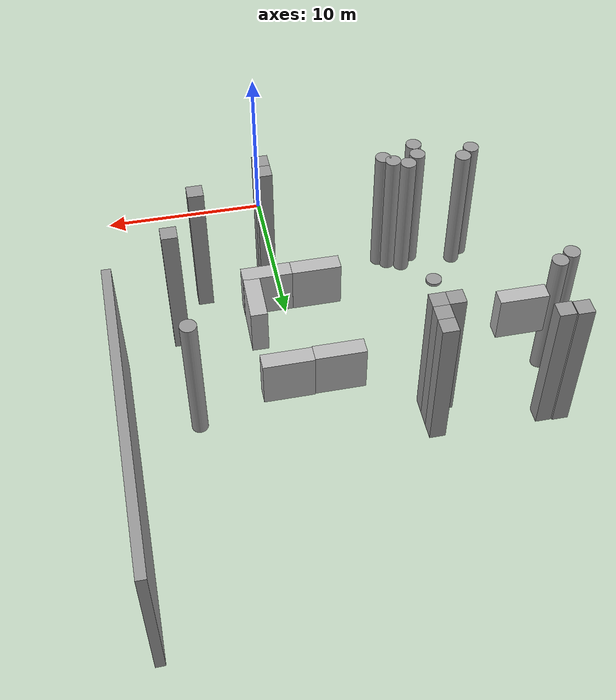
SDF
<sdf version="1.6">
 <model name="MW_world_1_0_0">
  <link name="link_0_0_clone_5">
   <pose>-15.6457 13.7871 0.5 0 -0 0</pose>
   <inertial>
    <mass>9.05819</mass>
    <inertia><ixx>62.5018</ixx><ixy>0</ixy><ixz>0</ixz><iyy>62.5018</iyy><iyz>0</iyz><izz>1.13227</izz></inertia>
   </inertial>
   <visual name="visual_0">
    <geometry><cylinder><radius>0.5</radius><length>9.05819</length></cylinder></geometry>
    <material>
     <lighting>1</lighting>
     <script><uri>file://media/materials/scripts/gazebo.material</uri><name>Gazebo/Grey</name></script>
     <ambient>0.3 0.3 0.3 1</ambient>
     <diffuse>0.7 0.7 0.7 1</diffuse>
     <specular>0.01 0.01 0.01 1</specular>
     <emissive>0 0 0 1</emissive>
     <shader type="pixel"/>
    </material>
   </visual>
   <collision name="collision">
    <geometry><cylinder><radius>0.5</radius><length>9.05819</length></cylinder></geometry>
    <surface>
     <friction>
      <ode><mu>1</mu><mu2>1</mu2><fdir1>0 0 0</fdir1><slip1>0</slip1><slip2>0</slip2></ode>
      <torsional>
       <coefficient>1</coefficient>
       <patch_radius>0</patch_radius>
       <surface_radius>0</surface_radius>
       <use_patch_radius>1</use_patch_radius>
       <ode><slip>0</slip></ode>
      </torsional>
     </friction>
     <bounce><restitution_coefficient>0</restitution_coefficient><threshold>1e+06</threshold></bounce>
     <contact>
      <collide_without_contact>0</collide_without_contact>
      <collide_without_contact_bitmask>1</collide_without_contact_bitmask>
      <collide_bitmask>1</collide_bitmask>
      <ode>
       <soft_cfm>0</soft_cfm>
       <soft_erp>0.2</soft_erp>
       <kp>1e+13</kp>
       <kd>1</kd>
       <max_vel>0.01</max_vel>
       <min_depth>0</min_depth>
      </ode>
      <bullet>
       <split_impulse>1</split_impulse>
       <split_impulse_penetration_threshold>-0.01</split_impulse_penetration_threshold>
       <soft_cfm>0</soft_cfm>
       <soft_erp>0.2</soft_erp>
       <kp>1e+13</kp>
       <kd>1</kd>
      </bullet>
     </contact>
    </surface>
   </collision>
  </link>
  <link name="link_0_0_clone_5_clone">
   <pose>-16.5428 13.2528 0.5 0 -0 0</pose>
   <inertial>
    <mass>9.05819</mass>
    <inertia><ixx>62.5018</ixx><ixy>0</ixy><ixz>0</ixz><iyy>62.5018</iyy><iyz>0</iyz><izz>1.13227</izz></inertia>
   </inertial>
   <visual name="visual_0">
    <geometry><cylinder><radius>0.5</radius><length>9.05819</length></cylinder></geometry>
    <material>
     <lighting>1</lighting>
     <script><uri>file://media/materials/scripts/gazebo.material</uri><name>Gazebo/Grey</name></script>
     <ambient>0.3 0.3 0.3 1</ambient>
     <diffuse>0.7 0.7 0.7 1</diffuse>
     <specular>0.01 0.01 0.01 1</specular>
     <emissive>0 0 0 1</emissive>
     <shader type="pixel"/>
    </material>
   </visual>
   <collision name="collision">
    <geometry><cylinder><radius>0.5</radius><length>9.05819</length></cylinder></geometry>
    <surface>
     <friction>
      <ode><mu>1</mu><mu2>1</mu2><fdir1>0 0 0</fdir1><slip1>0</slip1><slip2>0</slip2></ode>
      <torsional>
       <coefficient>1</coefficient>
       <patch_radius>0</patch_radius>
       <surface_radius>0</surface_radius>
       <use_patch_radius>1</use_patch_radius>
       <ode><slip>0</slip></ode>
      </torsional>
     </friction>
     <bounce><restitution_coefficient>0</restitution_coefficient><threshold>1e+06</threshold></bounce>
     <contact>
      <collide_without_contact>0</collide_without_contact>
      <collide_without_contact_bitmask>1</collide_without_contact_bitmask>
      <collide_bitmask>1</collide_bitmask>
      <ode>
       <soft_cfm>0</soft_cfm>
       <soft_erp>0.2</soft_erp>
       <kp>1e+13</kp>
       <kd>1</kd>
       <max_vel>0.01</max_vel>
       <min_depth>0</min_depth>
      </ode>
      <bullet>
       <split_impulse>1</split_impulse>
       <split_impulse_penetration_threshold>-0.01</split_impulse_penetration_threshold>
       <soft_cfm>0</soft_cfm>
       <soft_erp>0.2</soft_erp>
       <kp>1e+13</kp>
       <kd>1</kd>
      </bullet>
     </contact>
    </surface>
   </collision>
  </link>
  <link name="link_0_0_clone_5_clone_13_clone">
   <pose>6.21273 14.6456 0.5 0 -0 0</pose>
   <inertial>
    <mass>9.05819</mass>
    <inertia><ixx>62.5018</ixx><ixy>0</ixy><ixz>0</ixz><iyy>62.5018</iyy><iyz>0</iyz><izz>1.13227</izz></inertia>
   </inertial>
   <visual name="visual_0">
    <geometry><cylinder><radius>0.5</radius><length>9.05819</length></cylinder></geometry>
    <material>
     <lighting>1</lighting>
     <script><uri>file://media/materials/scripts/gazebo.material</uri><name>Gazebo/Grey</name></script>
     <ambient>0.3 0.3 0.3 1</ambient>
     <diffuse>0.7 0.7 0.7 1</diffuse>
     <specular>0.01 0.01 0.01 1</specular>
     <emissive>0 0 0 1</emissive>
     <shader type="pixel"/>
    </material>
   </visual>
   <collision name="collision">
    <geometry><cylinder><radius>0.5</radius><length>9.05819</length></cylinder></geometry>
    <surface>
     <friction>
      <ode><mu>1</mu><mu2>1</mu2><fdir1>0 0 0</fdir1><slip1>0</slip1><slip2>0</slip2></ode>
      <torsional>
       <coefficient>1</coefficient>
       <patch_radius>0</patch_radius>
       <surface_radius>0</surface_radius>
       <use_patch_radius>1</use_patch_radius>
       <ode><slip>0</slip></ode>
      </torsional>
     </friction>
     <bounce><restitution_coefficient>0</restitution_coefficient><threshold>1e+06</threshold></bounce>
     <contact>
      <collide_without_contact>0</collide_without_contact>
      <collide_without_contact_bitmask>1</collide_without_contact_bitmask>
      <collide_bitmask>1</collide_bitmask>
      <ode>
       <soft_cfm>0</soft_cfm>
       <soft_erp>0.2</soft_erp>
       <kp>1e+13</kp>
       <kd>1</kd>
       <max_vel>0.01</max_vel>
       <min_depth>0</min_depth>
      </ode>
      <bullet>
       <split_impulse>1</split_impulse>
       <split_impulse_penetration_threshold>-0.01</split_impulse_penetration_threshold>
       <soft_cfm>0</soft_cfm>
       <soft_erp>0.2</soft_erp>
       <kp>1e+13</kp>
       <kd>1</kd>
      </bullet>
     </contact>
    </surface>
   </collision>
  </link>
  <link name="link_0_0_clone_5_clone_2_clone_10">
   <pose>-13.5677 2.7321 0.5 0 -0 0</pose>
   <inertial>
    <mass>9.05819</mass>
    <inertia><ixx>62.5018</ixx><ixy>0</ixy><ixz>0</ixz><iyy>62.5018</iyy><iyz>0</iyz><izz>1.13227</izz></inertia>
   </inertial>
   <visual name="visual_0">
    <geometry><cylinder><radius>0.5</radius><length>9.05819</length></cylinder></geometry>
    <material>
     <lighting>1</lighting>
     <script><uri>file://media/materials/scripts/gazebo.material</uri><name>Gazebo/Grey</name></script>
     <ambient>0.3 0.3 0.3 1</ambient>
     <diffuse>0.7 0.7 0.7 1</diffuse>
     <specular>0.01 0.01 0.01 1</specular>
     <emissive>0 0 0 1</emissive>
     <shader type="pixel"/>
    </material>
   </visual>
   <collision name="collision">
    <geometry><cylinder><radius>0.5</radius><length>9.05819</length></cylinder></geometry>
    <surface>
     <friction>
      <ode><mu>1</mu><mu2>1</mu2><fdir1>0 0 0</fdir1><slip1>0</slip1><slip2>0</slip2></ode>
      <torsional>
       <coefficient>1</coefficient>
       <patch_radius>0</patch_radius>
       <surface_radius>0</surface_radius>
       <use_patch_radius>1</use_patch_radius>
       <ode><slip>0</slip></ode>
      </torsional>
     </friction>
     <bounce><restitution_coefficient>0</restitution_coefficient><threshold>1e+06</threshold></bounce>
     <contact>
      <collide_without_contact>0</collide_without_contact>
      <collide_without_contact_bitmask>1</collide_without_contact_bitmask>
      <collide_bitmask>1</collide_bitmask>
      <ode>
       <soft_cfm>0</soft_cfm>
       <soft_erp>0.2</soft_erp>
       <kp>1e+13</kp>
       <kd>1</kd>
       <max_vel>0.01</max_vel>
       <min_depth>0</min_depth>
      </ode>
      <bullet>
       <split_impulse>1</split_impulse>
       <split_impulse_penetration_threshold>-0.01</split_impulse_penetration_threshold>
       <soft_cfm>0</soft_cfm>
       <soft_erp>0.2</soft_erp>
       <kp>1e+13</kp>
       <kd>1</kd>
      </bullet>
     </contact>
    </surface>
   </collision>
  </link>
  <link name="link_0_0_clone_5_clone_2_clone_10_clone">
   <pose>-12.8482 3.45059 0.5 0 -0 0</pose>
   <inertial>
    <mass>9.05819</mass>
    <inertia><ixx>62.5018</ixx><ixy>0</ixy><ixz>0</ixz><iyy>62.5018</iyy><iyz>0</iyz><izz>1.13227</izz></inertia>
   </inertial>
   <visual name="visual_0">
    <geometry><cylinder><radius>0.5</radius><length>9.05819</length></cylinder></geometry>
    <material>
     <lighting>1</lighting>
     <script><uri>file://media/materials/scripts/gazebo.material</uri><name>Gazebo/Grey</name></script>
     <ambient>0.3 0.3 0.3 1</ambient>
     <diffuse>0.7 0.7 0.7 1</diffuse>
     <specular>0.01 0.01 0.01 1</specular>
     <emissive>0 0 0 1</emissive>
     <shader type="pixel"/>
    </material>
   </visual>
   <collision name="collision">
    <geometry><cylinder><radius>0.5</radius><length>9.05819</length></cylinder></geometry>
    <surface>
     <friction>
      <ode><mu>1</mu><mu2>1</mu2><fdir1>0 0 0</fdir1><slip1>0</slip1><slip2>0</slip2></ode>
      <torsional>
       <coefficient>1</coefficient>
       <patch_radius>0</patch_radius>
       <surface_radius>0</surface_radius>
       <use_patch_radius>1</use_patch_radius>
       <ode><slip>0</slip></ode>
      </torsional>
     </friction>
     <bounce><restitution_coefficient>0</restitution_coefficient><threshold>1e+06</threshold></bounce>
     <contact>
      <collide_without_contact>0</collide_without_contact>
      <collide_without_contact_bitmask>1</collide_without_contact_bitmask>
      <collide_bitmask>1</collide_bitmask>
      <ode>
       <soft_cfm>0</soft_cfm>
       <soft_erp>0.2</soft_erp>
       <kp>1e+13</kp>
       <kd>1</kd>
       <max_vel>0.01</max_vel>
       <min_depth>0</min_depth>
      </ode>
      <bullet>
       <split_impulse>1</split_impulse>
       <split_impulse_penetration_threshold>-0.01</split_impulse_penetration_threshold>
       <soft_cfm>0</soft_cfm>
       <soft_erp>0.2</soft_erp>
       <kp>1e+13</kp>
       <kd>1</kd>
      </bullet>
     </contact>
    </surface>
   </collision>
  </link>
  <link name="link_0_0_clone_5_clone_2_clone_3">
   <pose>-10.0181 1.7321 0.5 0 -0 0</pose>
   <inertial>
    <mass>9.05819</mass>
    <inertia><ixx>62.5018</ixx><ixy>0</ixy><ixz>0</ixz><iyy>62.5018</iyy><iyz>0</iyz><izz>1.13227</izz></inertia>
   </inertial>
   <visual name="visual_0">
    <geometry><cylinder><radius>0.5</radius><length>9.05819</length></cylinder></geometry>
    <material>
     <lighting>1</lighting>
     <script><uri>file://media/materials/scripts/gazebo.material</uri><name>Gazebo/Grey</name></script>
     <ambient>0.3 0.3 0.3 1</ambient>
     <diffuse>0.7 0.7 0.7 1</diffuse>
     <specular>0.01 0.01 0.01 1</specular>
     <emissive>0 0 0 1</emissive>
     <shader type="pixel"/>
    </material>
   </visual>
   <collision name="collision">
    <geometry><cylinder><radius>0.5</radius><length>9.05819</length></cylinder></geometry>
    <surface>
     <friction>
      <ode><mu>1</mu><mu2>1</mu2><fdir1>0 0 0</fdir1><slip1>0</slip1><slip2>0</slip2></ode>
      <torsional>
       <coefficient>1</coefficient>
       <patch_radius>0</patch_radius>
       <surface_radius>0</surface_radius>
       <use_patch_radius>1</use_patch_radius>
       <ode><slip>0</slip></ode>
      </torsional>
     </friction>
     <bounce><restitution_coefficient>0</restitution_coefficient><threshold>1e+06</threshold></bounce>
     <contact>
      <collide_without_contact>0</collide_without_contact>
      <collide_without_contact_bitmask>1</collide_without_contact_bitmask>
      <collide_bitmask>1</collide_bitmask>
      <ode>
       <soft_cfm>0</soft_cfm>
       <soft_erp>0.2</soft_erp>
       <kp>1e+13</kp>
       <kd>1</kd>
       <max_vel>0.01</max_vel>
       <min_depth>0</min_depth>
      </ode>
      <bullet>
       <split_impulse>1</split_impulse>
       <split_impulse_penetration_threshold>-0.01</split_impulse_penetration_threshold>
       <soft_cfm>0</soft_cfm>
       <soft_erp>0.2</soft_erp>
       <kp>1e+13</kp>
       <kd>1</kd>
      </bullet>
     </contact>
    </surface>
   </collision>
  </link>
  <link name="link_0_0_clone_5_clone_2_clone_4">
   <pose>-10.0181 2.7321 0.5 0 -0 0</pose>
   <inertial>
    <mass>9.05819</mass>
    <inertia><ixx>62.5018</ixx><ixy>0</ixy><ixz>0</ixz><iyy>62.5018</iyy><iyz>0</iyz><izz>1.13227</izz></inertia>
   </inertial>
   <visual name="visual_0">
    <geometry><cylinder><radius>0.5</radius><length>9.05819</length></cylinder></geometry>
    <material>
     <lighting>1</lighting>
     <script><uri>file://media/materials/scripts/gazebo.material</uri><name>Gazebo/Grey</name></script>
     <ambient>0.3 0.3 0.3 1</ambient>
     <diffuse>0.7 0.7 0.7 1</diffuse>
     <specular>0.01 0.01 0.01 1</specular>
     <emissive>0 0 0 1</emissive>
     <shader type="pixel"/>
    </material>
   </visual>
   <collision name="collision">
    <geometry><cylinder><radius>0.5</radius><length>9.05819</length></cylinder></geometry>
    <surface>
     <friction>
      <ode><mu>1</mu><mu2>1</mu2><fdir1>0 0 0</fdir1><slip1>0</slip1><slip2>0</slip2></ode>
      <torsional>
       <coefficient>1</coefficient>
       <patch_radius>0</patch_radius>
       <surface_radius>0</surface_radius>
       <use_patch_radius>1</use_patch_radius>
       <ode><slip>0</slip></ode>
      </torsional>
     </friction>
     <bounce><restitution_coefficient>0</restitution_coefficient><threshold>1e+06</threshold></bounce>
     <contact>
      <collide_without_contact>0</collide_without_contact>
      <collide_without_contact_bitmask>1</collide_without_contact_bitmask>
      <collide_bitmask>1</collide_bitmask>
      <ode>
       <soft_cfm>0</soft_cfm>
       <soft_erp>0.2</soft_erp>
       <kp>1e+13</kp>
       <kd>1</kd>
       <max_vel>0.01</max_vel>
       <min_depth>0</min_depth>
      </ode>
      <bullet>
       <split_impulse>1</split_impulse>
       <split_impulse_penetration_threshold>-0.01</split_impulse_penetration_threshold>
       <soft_cfm>0</soft_cfm>
       <soft_erp>0.2</soft_erp>
       <kp>1e+13</kp>
       <kd>1</kd>
      </bullet>
     </contact>
    </surface>
   </collision>
  </link>
  <link name="link_0_0_clone_5_clone_2_clone_4_clone">
   <pose>-9.2441 3.48537 0.5 0 -0 0</pose>
   <inertial>
    <mass>9.05819</mass>
    <inertia><ixx>62.5018</ixx><ixy>0</ixy><ixz>0</ixz><iyy>62.5018</iyy><iyz>0</iyz><izz>1.13227</izz></inertia>
   </inertial>
   <visual name="visual_0">
    <geometry><cylinder><radius>0.5</radius><length>9.05819</length></cylinder></geometry>
    <material>
     <lighting>1</lighting>
     <script><uri>file://media/materials/scripts/gazebo.material</uri><name>Gazebo/Grey</name></script>
     <ambient>0.3 0.3 0.3 1</ambient>
     <diffuse>0.7 0.7 0.7 1</diffuse>
     <specular>0.01 0.01 0.01 1</specular>
     <emissive>0 0 0 1</emissive>
     <shader type="pixel"/>
    </material>
   </visual>
   <collision name="collision">
    <geometry><cylinder><radius>0.5</radius><length>9.05819</length></cylinder></geometry>
    <surface>
     <friction>
      <ode><mu>1</mu><mu2>1</mu2><fdir1>0 0 0</fdir1><slip1>0</slip1><slip2>0</slip2></ode>
      <torsional>
       <coefficient>1</coefficient>
       <patch_radius>0</patch_radius>
       <surface_radius>0</surface_radius>
       <use_patch_radius>1</use_patch_radius>
       <ode><slip>0</slip></ode>
      </torsional>
     </friction>
     <bounce><restitution_coefficient>0</restitution_coefficient><threshold>1e+06</threshold></bounce>
     <contact>
      <collide_without_contact>0</collide_without_contact>
      <collide_without_contact_bitmask>1</collide_without_contact_bitmask>
      <collide_bitmask>1</collide_bitmask>
      <ode>
       <soft_cfm>0</soft_cfm>
       <soft_erp>0.2</soft_erp>
       <kp>1e+13</kp>
       <kd>1</kd>
       <max_vel>0.01</max_vel>
       <min_depth>0</min_depth>
      </ode>
      <bullet>
       <split_impulse>1</split_impulse>
       <split_impulse_penetration_threshold>-0.01</split_impulse_penetration_threshold>
       <soft_cfm>0</soft_cfm>
       <soft_erp>0.2</soft_erp>
       <kp>1e+13</kp>
       <kd>1</kd>
      </bullet>
     </contact>
    </surface>
   </collision>
  </link>
  <link name="link_0_0_clone_5_clone_2_clone_4_clone_0">
   <pose>-8.33133 3.08548 0.5 0 -0 0</pose>
   <inertial>
    <mass>9.05819</mass>
    <inertia><ixx>62.5018</ixx><ixy>0</ixy><ixz>0</ixz><iyy>62.5018</iyy><iyz>0</iyz><izz>1.13227</izz></inertia>
   </inertial>
   <visual name="visual_0">
    <geometry><cylinder><radius>0.5</radius><length>9.05819</length></cylinder></geometry>
    <material>
     <lighting>1</lighting>
     <script><uri>file://media/materials/scripts/gazebo.material</uri><name>Gazebo/Grey</name></script>
     <ambient>0.3 0.3 0.3 1</ambient>
     <diffuse>0.7 0.7 0.7 1</diffuse>
     <specular>0.01 0.01 0.01 1</specular>
     <emissive>0 0 0 1</emissive>
     <shader type="pixel"/>
    </material>
   </visual>
   <collision name="collision">
    <geometry><cylinder><radius>0.5</radius><length>9.05819</length></cylinder></geometry>
    <surface>
     <friction>
      <ode><mu>1</mu><mu2>1</mu2><fdir1>0 0 0</fdir1><slip1>0</slip1><slip2>0</slip2></ode>
      <torsional>
       <coefficient>1</coefficient>
       <patch_radius>0</patch_radius>
       <surface_radius>0</surface_radius>
       <use_patch_radius>1</use_patch_radius>
       <ode><slip>0</slip></ode>
      </torsional>
     </friction>
     <bounce><restitution_coefficient>0</restitution_coefficient><threshold>1e+06</threshold></bounce>
     <contact>
      <collide_without_contact>0</collide_without_contact>
      <collide_without_contact_bitmask>1</collide_without_contact_bitmask>
      <collide_bitmask>1</collide_bitmask>
      <ode>
       <soft_cfm>0</soft_cfm>
       <soft_erp>0.2</soft_erp>
       <kp>1e+13</kp>
       <kd>1</kd>
       <max_vel>0.01</max_vel>
       <min_depth>0</min_depth>
      </ode>
      <bullet>
       <split_impulse>1</split_impulse>
       <split_impulse_penetration_threshold>-0.01</split_impulse_penetration_threshold>
       <soft_cfm>0</soft_cfm>
       <soft_erp>0.2</soft_erp>
       <kp>1e+13</kp>
       <kd>1</kd>
      </bullet>
     </contact>
    </surface>
   </collision>
  </link>
  <link name="link_0_0_clone_5_clone_2_clone_4_clone_1">
   <pose>-7.78727 2.64565 0.5 0 -0 0</pose>
   <inertial>
    <mass>9.05819</mass>
    <inertia><ixx>62.5018</ixx><ixy>0</ixy><ixz>0</ixz><iyy>62.5018</iyy><iyz>0</iyz><izz>1.13227</izz></inertia>
   </inertial>
   <visual name="visual_0">
    <geometry><cylinder><radius>0.5</radius><length>9.05819</length></cylinder></geometry>
    <material>
     <lighting>1</lighting>
     <script><uri>file://media/materials/scripts/gazebo.material</uri><name>Gazebo/Grey</name></script>
     <ambient>0.3 0.3 0.3 1</ambient>
     <diffuse>0.7 0.7 0.7 1</diffuse>
     <specular>0.01 0.01 0.01 1</specular>
     <emissive>0 0 0 1</emissive>
     <shader type="pixel"/>
    </material>
   </visual>
   <collision name="collision">
    <geometry><cylinder><radius>0.5</radius><length>9.05819</length></cylinder></geometry>
    <surface>
     <friction>
      <ode><mu>1</mu><mu2>1</mu2><fdir1>0 0 0</fdir1><slip1>0</slip1><slip2>0</slip2></ode>
      <torsional>
       <coefficient>1</coefficient>
       <patch_radius>0</patch_radius>
       <surface_radius>0</surface_radius>
       <use_patch_radius>1</use_patch_radius>
       <ode><slip>0</slip></ode>
      </torsional>
     </friction>
     <bounce><restitution_coefficient>0</restitution_coefficient><threshold>1e+06</threshold></bounce>
     <contact>
      <collide_without_contact>0</collide_without_contact>
      <collide_without_contact_bitmask>1</collide_without_contact_bitmask>
      <collide_bitmask>1</collide_bitmask>
      <ode>
       <soft_cfm>0</soft_cfm>
       <soft_erp>0.2</soft_erp>
       <kp>1e+13</kp>
       <kd>1</kd>
       <max_vel>0.01</max_vel>
       <min_depth>0</min_depth>
      </ode>
      <bullet>
       <split_impulse>1</split_impulse>
       <split_impulse_penetration_threshold>-0.01</split_impulse_penetration_threshold>
       <soft_cfm>0</soft_cfm>
       <soft_erp>0.2</soft_erp>
       <kp>1e+13</kp>
       <kd>1</kd>
      </bullet>
     </contact>
    </surface>
   </collision>
  </link>
  <link name="link_0_clone">
   <pose>-15.5363 17.7977 0.5 0 -0 0</pose>
   <inertial>
    <mass>9.47467</mass>
    <inertia><ixx>71.6676</ixx><ixy>0</ixy><ixz>0</ixz><iyy>71.6676</iyy><iyz>0</iyz><izz>1.57911</izz></inertia>
   </inertial>
   <visual name="visual">
    <geometry><box><size>1 1 9.47467</size></box></geometry>
    <material>
     <lighting>1</lighting>
     <script><uri>file://media/materials/scripts/gazebo.material</uri><name>Gazebo/Grey</name></script>
     <ambient>0.3 0.3 0.3 1</ambient>
     <diffuse>0.7 0.7 0.7 1</diffuse>
     <specular>0.01 0.01 0.01 1</specular>
     <emissive>0 0 0 1</emissive>
     <shader type="pixel"/>
    </material>
   </visual>
   <collision name="collision">
    <geometry><box><size>1 1 9.47467</size></box></geometry>
    <surface>
     <friction>
      <ode><mu>1</mu><mu2>1</mu2><fdir1>0 0 0</fdir1><slip1>0</slip1><slip2>0</slip2></ode>
      <torsional>
       <coefficient>1</coefficient>
       <patch_radius>0</patch_radius>
       <surface_radius>0</surface_radius>
       <use_patch_radius>1</use_patch_radius>
       <ode><slip>0</slip></ode>
      </torsional>
     </friction>
     <bounce><restitution_coefficient>0</restitution_coefficient><threshold>1e+06</threshold></bounce>
     <contact>
      <collide_without_contact>0</collide_without_contact>
      <collide_without_contact_bitmask>1</collide_without_contact_bitmask>
      <collide_bitmask>1</collide_bitmask>
      <ode>
       <soft_cfm>0</soft_cfm>
       <soft_erp>0.2</soft_erp>
       <kp>1e+13</kp>
       <kd>1</kd>
       <max_vel>0.01</max_vel>
       <min_depth>0</min_depth>
      </ode>
      <bullet>
       <split_impulse>1</split_impulse>
       <split_impulse_penetration_threshold>-0.01</split_impulse_penetration_threshold>
       <soft_cfm>0</soft_cfm>
       <soft_erp>0.2</soft_erp>
       <kp>1e+13</kp>
       <kd>1</kd>
      </bullet>
     </contact>
    </surface>
   </collision>
  </link>
  <link name="link_0_clone_0_clone_clone_2">
   <pose>-0.0181 1.7321 0.5 0 -0 0</pose>
   <inertial>
    <mass>9.47467</mass>
    <inertia><ixx>71.6676</ixx><ixy>0</ixy><ixz>0</ixz><iyy>71.6676</iyy><iyz>0</iyz><izz>1.57911</izz></inertia>
   </inertial>
   <visual name="visual">
    <geometry><box><size>1 1 9.47467</size></box></geometry>
    <material>
     <lighting>1</lighting>
     <script><uri>file://media/materials/scripts/gazebo.material</uri><name>Gazebo/Grey</name></script>
     <ambient>0.3 0.3 0.3 1</ambient>
     <diffuse>0.7 0.7 0.7 1</diffuse>
     <specular>0.01 0.01 0.01 1</specular>
     <emissive>0 0 0 1</emissive>
     <shader type="pixel"/>
    </material>
   </visual>
   <collision name="collision">
    <geometry><box><size>1 1 9.47467</size></box></geometry>
    <surface>
     <friction>
      <ode><mu>1</mu><mu2>1</mu2><fdir1>0 0 0</fdir1><slip1>0</slip1><slip2>0</slip2></ode>
      <torsional>
       <coefficient>1</coefficient>
       <patch_radius>0</patch_radius>
       <surface_radius>0</surface_radius>
       <use_patch_radius>1</use_patch_radius>
       <ode><slip>0</slip></ode>
      </torsional>
     </friction>
     <bounce><restitution_coefficient>0</restitution_coefficient><threshold>1e+06</threshold></bounce>
     <contact>
      <collide_without_contact>0</collide_without_contact>
      <collide_without_contact_bitmask>1</collide_without_contact_bitmask>
      <collide_bitmask>1</collide_bitmask>
      <ode>
       <soft_cfm>0</soft_cfm>
       <soft_erp>0.2</soft_erp>
       <kp>1e+13</kp>
       <kd>1</kd>
       <max_vel>0.01</max_vel>
       <min_depth>0</min_depth>
      </ode>
      <bullet>
       <split_impulse>1</split_impulse>
       <split_impulse_penetration_threshold>-0.01</split_impulse_penetration_threshold>
       <soft_cfm>0</soft_cfm>
       <soft_erp>0.2</soft_erp>
       <kp>1e+13</kp>
       <kd>1</kd>
      </bullet>
     </contact>
    </surface>
   </collision>
  </link>
  <link name="link_0_clone_0_clone_clone_3">
   <pose>-0.0181 2.7321 0.5 0 -0 0</pose>
   <inertial>
    <mass>9.47467</mass>
    <inertia><ixx>71.6676</ixx><ixy>0</ixy><ixz>0</ixz><iyy>71.6676</iyy><iyz>0</iyz><izz>1.57911</izz></inertia>
   </inertial>
   <visual name="visual">
    <geometry><box><size>1 1 9.47467</size></box></geometry>
    <material>
     <lighting>1</lighting>
     <script><uri>file://media/materials/scripts/gazebo.material</uri><name>Gazebo/Grey</name></script>
     <ambient>0.3 0.3 0.3 1</ambient>
     <diffuse>0.7 0.7 0.7 1</diffuse>
     <specular>0.01 0.01 0.01 1</specular>
     <emissive>0 0 0 1</emissive>
     <shader type="pixel"/>
    </material>
   </visual>
   <collision name="collision">
    <geometry><box><size>1 1 9.47467</size></box></geometry>
    <surface>
     <friction>
      <ode><mu>1</mu><mu2>1</mu2><fdir1>0 0 0</fdir1><slip1>0</slip1><slip2>0</slip2></ode>
      <torsional>
       <coefficient>1</coefficient>
       <patch_radius>0</patch_radius>
       <surface_radius>0</surface_radius>
       <use_patch_radius>1</use_patch_radius>
       <ode><slip>0</slip></ode>
      </torsional>
     </friction>
     <bounce><restitution_coefficient>0</restitution_coefficient><threshold>1e+06</threshold></bounce>
     <contact>
      <collide_without_contact>0</collide_without_contact>
      <collide_without_contact_bitmask>1</collide_without_contact_bitmask>
      <collide_bitmask>1</collide_bitmask>
      <ode>
       <soft_cfm>0</soft_cfm>
       <soft_erp>0.2</soft_erp>
       <kp>1e+13</kp>
       <kd>1</kd>
       <max_vel>0.01</max_vel>
       <min_depth>0</min_depth>
      </ode>
      <bullet>
       <split_impulse>1</split_impulse>
       <split_impulse_penetration_threshold>-0.01</split_impulse_penetration_threshold>
       <soft_cfm>0</soft_cfm>
       <soft_erp>0.2</soft_erp>
       <kp>1e+13</kp>
       <kd>1</kd>
      </bullet>
     </contact>
    </surface>
   </collision>
  </link>
  <link name="link_0_clone_1">
   <pose>-9.5387 9.62735 0.5 0 -0 0</pose>
   <inertial>
    <mass>0.190242</mass>
    <inertia>
     <ixx>0.0124639</ixx>
     <ixy>0</ixy>
     <ixz>0</ixz>
     <iyy>0.0124639</iyy>
     <iyz>0</iyz>
     <izz>0.0237802</izz>
    </inertia>
   </inertial>
   <visual name="visual">
    <geometry><cylinder><radius>0.5</radius><length>0.190241</length></cylinder></geometry>
    <material>
     <lighting>1</lighting>
     <script><uri>file://media/materials/scripts/gazebo.material</uri><name>Gazebo/Grey</name></script>
     <ambient>0.3 0.3 0.3 1</ambient>
     <diffuse>0.7 0.7 0.7 1</diffuse>
     <specular>0.01 0.01 0.01 1</specular>
     <emissive>0 0 0 1</emissive>
     <shader type="pixel"/>
    </material>
   </visual>
   <collision name="collision">
    <geometry><cylinder><radius>0.5</radius><length>0.190241</length></cylinder></geometry>
    <surface>
     <friction>
      <ode><mu>1</mu><mu2>1</mu2><fdir1>0 0 0</fdir1><slip1>0</slip1><slip2>0</slip2></ode>
      <torsional>
       <coefficient>1</coefficient>
       <patch_radius>0</patch_radius>
       <surface_radius>0</surface_radius>
       <use_patch_radius>1</use_patch_radius>
       <ode><slip>0</slip></ode>
      </torsional>
     </friction>
     <bounce><restitution_coefficient>0</restitution_coefficient><threshold>1e+06</threshold></bounce>
     <contact>
      <collide_without_contact>0</collide_without_contact>
      <collide_without_contact_bitmask>1</collide_without_contact_bitmask>
      <collide_bitmask>1</collide_bitmask>
      <ode>
       <soft_cfm>0</soft_cfm>
       <soft_erp>0.2</soft_erp>
       <kp>1e+13</kp>
       <kd>1</kd>
       <max_vel>0.01</max_vel>
       <min_depth>0</min_depth>
      </ode>
      <bullet>
       <split_impulse>1</split_impulse>
       <split_impulse_penetration_threshold>-0.01</split_impulse_penetration_threshold>
       <soft_cfm>0</soft_cfm>
       <soft_erp>0.2</soft_erp>
       <kp>1e+13</kp>
       <kd>1</kd>
      </bullet>
     </contact>
    </surface>
   </collision>
  </link>
  <link name="link_0_clone_clone_1_clone_1_clone">
   <pose>6.42816 7.21597 0.5 0 -0 0</pose>
   <inertial>
    <mass>9.47467</mass>
    <inertia><ixx>71.6676</ixx><ixy>0</ixy><ixz>0</ixz><iyy>71.6676</iyy><iyz>0</iyz><izz>1.57911</izz></inertia>
   </inertial>
   <visual name="visual">
    <geometry><box><size>1 1 9.47467</size></box></geometry>
    <material>
     <lighting>1</lighting>
     <script><uri>file://media/materials/scripts/gazebo.material</uri><name>Gazebo/Grey</name></script>
     <ambient>0.3 0.3 0.3 1</ambient>
     <diffuse>0.7 0.7 0.7 1</diffuse>
     <specular>0.01 0.01 0.01 1</specular>
     <emissive>0 0 0 1</emissive>
     <shader type="pixel"/>
    </material>
   </visual>
   <collision name="collision">
    <geometry><box><size>1 1 9.47467</size></box></geometry>
    <surface>
     <friction>
      <ode><mu>1</mu><mu2>1</mu2><fdir1>0 0 0</fdir1><slip1>0</slip1><slip2>0</slip2></ode>
      <torsional>
       <coefficient>1</coefficient>
       <patch_radius>0</patch_radius>
       <surface_radius>0</surface_radius>
       <use_patch_radius>1</use_patch_radius>
       <ode><slip>0</slip></ode>
      </torsional>
     </friction>
     <bounce><restitution_coefficient>0</restitution_coefficient><threshold>1e+06</threshold></bounce>
     <contact>
      <collide_without_contact>0</collide_without_contact>
      <collide_without_contact_bitmask>1</collide_without_contact_bitmask>
      <collide_bitmask>1</collide_bitmask>
      <ode>
       <soft_cfm>0</soft_cfm>
       <soft_erp>0.2</soft_erp>
       <kp>1e+13</kp>
       <kd>1</kd>
       <max_vel>0.01</max_vel>
       <min_depth>0</min_depth>
      </ode>
      <bullet>
       <split_impulse>1</split_impulse>
       <split_impulse_penetration_threshold>-0.01</split_impulse_penetration_threshold>
       <soft_cfm>0</soft_cfm>
       <soft_erp>0.2</soft_erp>
       <kp>1e+13</kp>
       <kd>1</kd>
      </bullet>
     </contact>
    </surface>
   </collision>
  </link>
  <link name="link_0_clone_clone_1_clone_1_clone_0">
   <pose>4.42816 3.78761 0.5 0 -0 0</pose>
   <inertial>
    <mass>9.47467</mass>
    <inertia><ixx>71.6676</ixx><ixy>0</ixy><ixz>0</ixz><iyy>71.6676</iyy><iyz>0</iyz><izz>1.57911</izz></inertia>
   </inertial>
   <visual name="visual">
    <geometry><box><size>1 1 9.47467</size></box></geometry>
    <material>
     <lighting>1</lighting>
     <script><uri>file://media/materials/scripts/gazebo.material</uri><name>Gazebo/Grey</name></script>
     <ambient>0.3 0.3 0.3 1</ambient>
     <diffuse>0.7 0.7 0.7 1</diffuse>
     <specular>0.01 0.01 0.01 1</specular>
     <emissive>0 0 0 1</emissive>
     <shader type="pixel"/>
    </material>
   </visual>
   <collision name="collision">
    <geometry><box><size>1 1 9.47467</size></box></geometry>
    <surface>
     <friction>
      <ode><mu>1</mu><mu2>1</mu2><fdir1>0 0 0</fdir1><slip1>0</slip1><slip2>0</slip2></ode>
      <torsional>
       <coefficient>1</coefficient>
       <patch_radius>0</patch_radius>
       <surface_radius>0</surface_radius>
       <use_patch_radius>1</use_patch_radius>
       <ode><slip>0</slip></ode>
      </torsional>
     </friction>
     <bounce><restitution_coefficient>0</restitution_coefficient><threshold>1e+06</threshold></bounce>
     <contact>
      <collide_without_contact>0</collide_without_contact>
      <collide_without_contact_bitmask>1</collide_without_contact_bitmask>
      <collide_bitmask>1</collide_bitmask>
      <ode>
       <soft_cfm>0</soft_cfm>
       <soft_erp>0.2</soft_erp>
       <kp>1e+13</kp>
       <kd>1</kd>
       <max_vel>0.01</max_vel>
       <min_depth>0</min_depth>
      </ode>
      <bullet>
       <split_impulse>1</split_impulse>
       <split_impulse_penetration_threshold>-0.01</split_impulse_penetration_threshold>
       <soft_cfm>0</soft_cfm>
       <soft_erp>0.2</soft_erp>
       <kp>1e+13</kp>
       <kd>1</kd>
      </bullet>
     </contact>
    </surface>
   </collision>
  </link>
  <link name="link_0_clone_clone_clone_1_clone">
   <pose>-14.4872 17.7321 0.5 0 -0 0</pose>
   <inertial>
    <mass>9.47467</mass>
    <inertia><ixx>71.6676</ixx><ixy>0</ixy><ixz>0</ixz><iyy>71.6676</iyy><iyz>0</iyz><izz>1.57911</izz></inertia>
   </inertial>
   <visual name="visual">
    <geometry><box><size>1 1 9.47467</size></box></geometry>
    <material>
     <lighting>1</lighting>
     <script><uri>file://media/materials/scripts/gazebo.material</uri><name>Gazebo/Grey</name></script>
     <ambient>0.3 0.3 0.3 1</ambient>
     <diffuse>0.7 0.7 0.7 1</diffuse>
     <specular>0.01 0.01 0.01 1</specular>
     <emissive>0 0 0 1</emissive>
     <shader type="pixel"/>
    </material>
   </visual>
   <collision name="collision">
    <geometry><box><size>1 1 9.47467</size></box></geometry>
    <surface>
     <friction>
      <ode><mu>1</mu><mu2>1</mu2><fdir1>0 0 0</fdir1><slip1>0</slip1><slip2>0</slip2></ode>
      <torsional>
       <coefficient>1</coefficient>
       <patch_radius>0</patch_radius>
       <surface_radius>0</surface_radius>
       <use_patch_radius>1</use_patch_radius>
       <ode><slip>0</slip></ode>
      </torsional>
     </friction>
     <bounce><restitution_coefficient>0</restitution_coefficient><threshold>1e+06</threshold></bounce>
     <contact>
      <collide_without_contact>0</collide_without_contact>
      <collide_without_contact_bitmask>1</collide_without_contact_bitmask>
      <collide_bitmask>1</collide_bitmask>
      <ode>
       <soft_cfm>0</soft_cfm>
       <soft_erp>0.2</soft_erp>
       <kp>1e+13</kp>
       <kd>1</kd>
       <max_vel>0.01</max_vel>
       <min_depth>0</min_depth>
      </ode>
      <bullet>
       <split_impulse>1</split_impulse>
       <split_impulse_penetration_threshold>-0.01</split_impulse_penetration_threshold>
       <soft_cfm>0</soft_cfm>
       <soft_erp>0.2</soft_erp>
       <kp>1e+13</kp>
       <kd>1</kd>
      </bullet>
     </contact>
    </surface>
   </collision>
  </link>
  <link name="link_0_clone_clone_clone_4_clone_6">
   <pose>-7.78727 17.6456 0.5 0 -0 0</pose>
   <inertial>
    <mass>9.47467</mass>
    <inertia><ixx>71.6676</ixx><ixy>0</ixy><ixz>0</ixz><iyy>71.6676</iyy><iyz>0</iyz><izz>1.57911</izz></inertia>
   </inertial>
   <visual name="visual">
    <geometry><box><size>1 1 9.47467</size></box></geometry>
    <material>
     <lighting>1</lighting>
     <script><uri>file://media/materials/scripts/gazebo.material</uri><name>Gazebo/Grey</name></script>
     <ambient>0.3 0.3 0.3 1</ambient>
     <diffuse>0.7 0.7 0.7 1</diffuse>
     <specular>0.01 0.01 0.01 1</specular>
     <emissive>0 0 0 1</emissive>
     <shader type="pixel"/>
    </material>
   </visual>
   <collision name="collision">
    <geometry><box><size>1 1 9.47467</size></box></geometry>
    <surface>
     <friction>
      <ode><mu>1</mu><mu2>1</mu2><fdir1>0 0 0</fdir1><slip1>0</slip1><slip2>0</slip2></ode>
      <torsional>
       <coefficient>1</coefficient>
       <patch_radius>0</patch_radius>
       <surface_radius>0</surface_radius>
       <use_patch_radius>1</use_patch_radius>
       <ode><slip>0</slip></ode>
      </torsional>
     </friction>
     <bounce><restitution_coefficient>0</restitution_coefficient><threshold>1e+06</threshold></bounce>
     <contact>
      <collide_without_contact>0</collide_without_contact>
      <collide_without_contact_bitmask>1</collide_without_contact_bitmask>
      <collide_bitmask>1</collide_bitmask>
      <ode>
       <soft_cfm>0</soft_cfm>
       <soft_erp>0.2</soft_erp>
       <kp>1e+13</kp>
       <kd>1</kd>
       <max_vel>0.01</max_vel>
       <min_depth>0</min_depth>
      </ode>
      <bullet>
       <split_impulse>1</split_impulse>
       <split_impulse_penetration_threshold>-0.01</split_impulse_penetration_threshold>
       <soft_cfm>0</soft_cfm>
       <soft_erp>0.2</soft_erp>
       <kp>1e+13</kp>
       <kd>1</kd>
      </bullet>
     </contact>
    </surface>
   </collision>
  </link>
  <link name="link_0_clone_clone_clone_4_clone_7">
   <pose>-7.78727 16.6456 0.5 0 -0 0</pose>
   <inertial>
    <mass>9.47467</mass>
    <inertia><ixx>71.6676</ixx><ixy>0</ixy><ixz>0</ixz><iyy>71.6676</iyy><iyz>0</iyz><izz>1.57911</izz></inertia>
   </inertial>
   <visual name="visual">
    <geometry><box><size>1 1 9.47467</size></box></geometry>
    <material>
     <lighting>1</lighting>
     <script><uri>file://media/materials/scripts/gazebo.material</uri><name>Gazebo/Grey</name></script>
     <ambient>0.3 0.3 0.3 1</ambient>
     <diffuse>0.7 0.7 0.7 1</diffuse>
     <specular>0.01 0.01 0.01 1</specular>
     <emissive>0 0 0 1</emissive>
     <shader type="pixel"/>
    </material>
   </visual>
   <collision name="collision">
    <geometry><box><size>1 1 9.47467</size></box></geometry>
    <surface>
     <friction>
      <ode><mu>1</mu><mu2>1</mu2><fdir1>0 0 0</fdir1><slip1>0</slip1><slip2>0</slip2></ode>
      <torsional>
       <coefficient>1</coefficient>
       <patch_radius>0</patch_radius>
       <surface_radius>0</surface_radius>
       <use_patch_radius>1</use_patch_radius>
       <ode><slip>0</slip></ode>
      </torsional>
     </friction>
     <bounce><restitution_coefficient>0</restitution_coefficient><threshold>1e+06</threshold></bounce>
     <contact>
      <collide_without_contact>0</collide_without_contact>
      <collide_without_contact_bitmask>1</collide_without_contact_bitmask>
      <collide_bitmask>1</collide_bitmask>
      <ode>
       <soft_cfm>0</soft_cfm>
       <soft_erp>0.2</soft_erp>
       <kp>1e+13</kp>
       <kd>1</kd>
       <max_vel>0.01</max_vel>
       <min_depth>0</min_depth>
      </ode>
      <bullet>
       <split_impulse>1</split_impulse>
       <split_impulse_penetration_threshold>-0.01</split_impulse_penetration_threshold>
       <soft_cfm>0</soft_cfm>
       <soft_erp>0.2</soft_erp>
       <kp>1e+13</kp>
       <kd>1</kd>
      </bullet>
     </contact>
    </surface>
   </collision>
  </link>
  <link name="link_0_clone_clone_clone_4_clone_8">
   <pose>-7.78727 15.6456 0.5 0 -0 0</pose>
   <inertial>
    <mass>9.47467</mass>
    <inertia><ixx>71.6676</ixx><ixy>0</ixy><ixz>0</ixz><iyy>71.6676</iyy><iyz>0</iyz><izz>1.57911</izz></inertia>
   </inertial>
   <visual name="visual">
    <geometry><box><size>1 1 9.47467</size></box></geometry>
    <material>
     <lighting>1</lighting>
     <script><uri>file://media/materials/scripts/gazebo.material</uri><name>Gazebo/Grey</name></script>
     <ambient>0.3 0.3 0.3 1</ambient>
     <diffuse>0.7 0.7 0.7 1</diffuse>
     <specular>0.01 0.01 0.01 1</specular>
     <emissive>0 0 0 1</emissive>
     <shader type="pixel"/>
    </material>
   </visual>
   <collision name="collision">
    <geometry><box><size>1 1 9.47467</size></box></geometry>
    <surface>
     <friction>
      <ode><mu>1</mu><mu2>1</mu2><fdir1>0 0 0</fdir1><slip1>0</slip1><slip2>0</slip2></ode>
      <torsional>
       <coefficient>1</coefficient>
       <patch_radius>0</patch_radius>
       <surface_radius>0</surface_radius>
       <use_patch_radius>1</use_patch_radius>
       <ode><slip>0</slip></ode>
      </torsional>
     </friction>
     <bounce><restitution_coefficient>0</restitution_coefficient><threshold>1e+06</threshold></bounce>
     <contact>
      <collide_without_contact>0</collide_without_contact>
      <collide_without_contact_bitmask>1</collide_without_contact_bitmask>
      <collide_bitmask>1</collide_bitmask>
      <ode>
       <soft_cfm>0</soft_cfm>
       <soft_erp>0.2</soft_erp>
       <kp>1e+13</kp>
       <kd>1</kd>
       <max_vel>0.01</max_vel>
       <min_depth>0</min_depth>
      </ode>
      <bullet>
       <split_impulse>1</split_impulse>
       <split_impulse_penetration_threshold>-0.01</split_impulse_penetration_threshold>
       <soft_cfm>0</soft_cfm>
       <soft_erp>0.2</soft_erp>
       <kp>1e+13</kp>
       <kd>1</kd>
      </bullet>
     </contact>
    </surface>
   </collision>
  </link>
  <link name="link_0_clone_clone_clone_4_clone_9">
   <pose>-8.78727 15.6456 0.5 0 -0 0</pose>
   <inertial>
    <mass>9.47467</mass>
    <inertia><ixx>71.6676</ixx><ixy>0</ixy><ixz>0</ixz><iyy>71.6676</iyy><iyz>0</iyz><izz>1.57911</izz></inertia>
   </inertial>
   <visual name="visual">
    <geometry><box><size>1 1 9.47467</size></box></geometry>
    <material>
     <lighting>1</lighting>
     <script><uri>file://media/materials/scripts/gazebo.material</uri><name>Gazebo/Grey</name></script>
     <ambient>0.3 0.3 0.3 1</ambient>
     <diffuse>0.7 0.7 0.7 1</diffuse>
     <specular>0.01 0.01 0.01 1</specular>
     <emissive>0 0 0 1</emissive>
     <shader type="pixel"/>
    </material>
   </visual>
   <collision name="collision">
    <geometry><box><size>1 1 9.47467</size></box></geometry>
    <surface>
     <friction>
      <ode><mu>1</mu><mu2>1</mu2><fdir1>0 0 0</fdir1><slip1>0</slip1><slip2>0</slip2></ode>
      <torsional>
       <coefficient>1</coefficient>
       <patch_radius>0</patch_radius>
       <surface_radius>0</surface_radius>
       <use_patch_radius>1</use_patch_radius>
       <ode><slip>0</slip></ode>
      </torsional>
     </friction>
     <bounce><restitution_coefficient>0</restitution_coefficient><threshold>1e+06</threshold></bounce>
     <contact>
      <collide_without_contact>0</collide_without_contact>
      <collide_without_contact_bitmask>1</collide_without_contact_bitmask>
      <collide_bitmask>1</collide_bitmask>
      <ode>
       <soft_cfm>0</soft_cfm>
       <soft_erp>0.2</soft_erp>
       <kp>1e+13</kp>
       <kd>1</kd>
       <max_vel>0.01</max_vel>
       <min_depth>0</min_depth>
      </ode>
      <bullet>
       <split_impulse>1</split_impulse>
       <split_impulse_penetration_threshold>-0.01</split_impulse_penetration_threshold>
       <soft_cfm>0</soft_cfm>
       <soft_erp>0.2</soft_erp>
       <kp>1e+13</kp>
       <kd>1</kd>
      </bullet>
     </contact>
    </surface>
   </collision>
  </link>
  <model name="brick_box_3x1x3_clone_clone">
   <static>1</static>
   <link name="chassis">
    <pose>0 0 1.5 0 -0 0</pose>
    <collision name="collision"><geometry><box><size>3 1 3</size></box></geometry></collision>
    <visual name="visual">
     <geometry><mesh><uri>model://brick_box_3x1x3/meshes/simple_box.dae</uri><scale>3 1 3</scale></mesh></geometry>
     <material>
      <script>
       <uri>model://brick_box_3x1x3/materials/scripts</uri>
       <uri>model://brick_box_3x1x3/materials/textures</uri>
       <name>BrickBox/Diffuse</name>
      </script>
     </material>
    </visual>
   </link>
   <pose>-2.0181 9.29865 0 0 -0 0</pose>
  </model>
  <model name="brick_box_3x1x3_clone_clone_0">
   <static>1</static>
   <link name="chassis">
    <pose>0 0 1.5 0 -0 0</pose>
    <collision name="collision"><geometry><box><size>3 1 3</size></box></geometry></collision>
    <visual name="visual">
     <geometry><mesh><uri>model://brick_box_3x1x3/meshes/simple_box.dae</uri><scale>3 1 3</scale></mesh></geometry>
     <material>
      <script>
       <uri>model://brick_box_3x1x3/materials/scripts</uri>
       <uri>model://brick_box_3x1x3/materials/textures</uri>
       <name>BrickBox/Diffuse</name>
      </script>
     </material>
    </visual>
   </link>
   <pose>0.9819 9.29478 0 0 -0 0</pose>
  </model>
  <model name="brick_box_3x1x3_clone_clone_0_clone">
   <static>1</static>
   <link name="chassis">
    <pose>0 0 1.5 0 -0 0</pose>
    <collision name="collision"><geometry><box><size>3 1 3</size></box></geometry></collision>
    <visual name="visual">
     <geometry><mesh><uri>model://brick_box_3x1x3/meshes/simple_box.dae</uri><scale>3 1 3</scale></mesh></geometry>
     <material>
      <script>
       <uri>model://brick_box_3x1x3/materials/scripts</uri>
       <uri>model://brick_box_3x1x3/materials/textures</uri>
       <name>BrickBox/Diffuse</name>
      </script>
     </material>
    </visual>
   </link>
   <pose>0.9819 16.2875 0 0 -0 0</pose>
  </model>
  <model name="brick_box_3x1x3_clone_clone_0_clone_0">
   <static>1</static>
   <link name="chassis">
    <pose>0 0 1.5 0 -0 0</pose>
    <collision name="collision"><geometry><box><size>3 1 3</size></box></geometry></collision>
    <visual name="visual">
     <geometry><mesh><uri>model://brick_box_3x1x3/meshes/simple_box.dae</uri><scale>3 1 3</scale></mesh></geometry>
     <material>
      <script>
       <uri>model://brick_box_3x1x3/materials/scripts</uri>
       <uri>model://brick_box_3x1x3/materials/textures</uri>
       <name>BrickBox/Diffuse</name>
      </script>
     </material>
    </visual>
   </link>
   <pose>-2.0181 16.2334 0 0 -0 0</pose>
  </model>
  <model name="brick_box_3x1x3_clone_clone_1_clone_clone">
   <static>1</static>
   <link name="chassis">
    <pose>0 0 1.5 0 -0 0</pose>
    <collision name="collision"><geometry><box><size>3 1 3</size></box></geometry></collision>
    <visual name="visual">
     <geometry><mesh><uri>model://brick_box_3x1x3/meshes/simple_box.dae</uri><scale>3 1 3</scale></mesh></geometry>
     <material>
      <script>
       <uri>model://brick_box_3x1x3/materials/scripts</uri>
       <uri>model://brick_box_3x1x3/materials/textures</uri>
       <name>BrickBox/Diffuse</name>
      </script>
     </material>
    </visual>
   </link>
   <pose>1.9819 11.2482 0 0 0 -1.58115</pose>
  </model>
  <model name="brick_box_3x1x3_clone_clone_clone">
   <static>1</static>
   <link name="chassis">
    <pose>0 0 1.5 0 -0 0</pose>
    <collision name="collision"><geometry><box><size>3 1 3</size></box></geometry></collision>
    <visual name="visual">
     <geometry><mesh><uri>model://brick_box_3x1x3/meshes/simple_box.dae</uri><scale>3 1 3</scale></mesh></geometry>
     <material>
      <script>
       <uri>model://brick_box_3x1x3/materials/scripts</uri>
       <uri>model://brick_box_3x1x3/materials/textures</uri>
       <name>BrickBox/Diffuse</name>
      </script>
     </material>
    </visual>
   </link>
   <pose>-13.5227 14.144 0 0 -0 0</pose>
  </model>
  <model name="grey_wall_mw_clone_0_clone">
   <link name="link">
    <pose>-8.81665 -2.69351 1.4 0 -0 0</pose>
    <inertial>
     <inertia><ixx>nan</ixx><ixy>0</ixy><ixz>0</ixz><iyy>nan</iyy><iyz>0</iyz><izz>nan</izz></inertia>
     <mass>0</mass>
    </inertial>
    <visual name="visual">
     <cast_shadows>0</cast_shadows>
     <geometry><box><size>20.2056 0.556506 8.63552</size></box></geometry>
     <material>
      <script>
       <uri>model://grey_wall/materials/scripts</uri>
       <uri>model://grey_wall/materials/textures</uri>
       <name>vrc/grey_wall</name>
      </script>
      <ambient>1 1 1 1</ambient>
      <diffuse>1 1 1 1</diffuse>
      <specular>0 0 0 1</specular>
      <emissive>0 0 0 1</emissive>
     </material>
    </visual>
    <collision name="collision">
     <geometry><box><size>20.2056 0.556506 8.63552</size></box></geometry>
     <surface>
      <friction>
       <ode><mu>1</mu><mu2>1</mu2><fdir1>0 0 0</fdir1><slip1>0</slip1><slip2>0</slip2></ode>
       <torsional>
        <coefficient>1</coefficient>
        <patch_radius>0</patch_radius>
        <surface_radius>0</surface_radius>
        <use_patch_radius>1</use_patch_radius>
        <ode><slip>0</slip></ode>
       </torsional>
      </friction>
      <bounce><restitution_coefficient>0</restitution_coefficient><threshold>1e+06</threshold></bounce>
      <contact>
       <collide_without_contact>0</collide_without_contact>
       <collide_without_contact_bitmask>1</collide_without_contact_bitmask>
       <collide_bitmask>1</collide_bitmask>
       <ode>
        <soft_cfm>0</soft_cfm>
        <soft_erp>0.2</soft_erp>
        <kp>1e+13</kp>
        <kd>1</kd>
        <max_vel>0.01</max_vel>
        <min_depth>0</min_depth>
       </ode>
       <bullet>
        <split_impulse>1</split_impulse>
        <split_impulse_penetration_threshold>-0.01</split_impulse_penetration_threshold>
        <soft_cfm>0</soft_cfm>
        <soft_erp>0.2</soft_erp>
        <kp>1e+13</kp>
        <kd>1</kd>
       </bullet>
      </contact>
     </surface>
    </collision>
   </link>
   <static>1</static>
   <pose>12.9434 11.3466 0 0 0 -1.56891</pose>
  </model>
  <static>1</static>
 </model>
</sdf>
